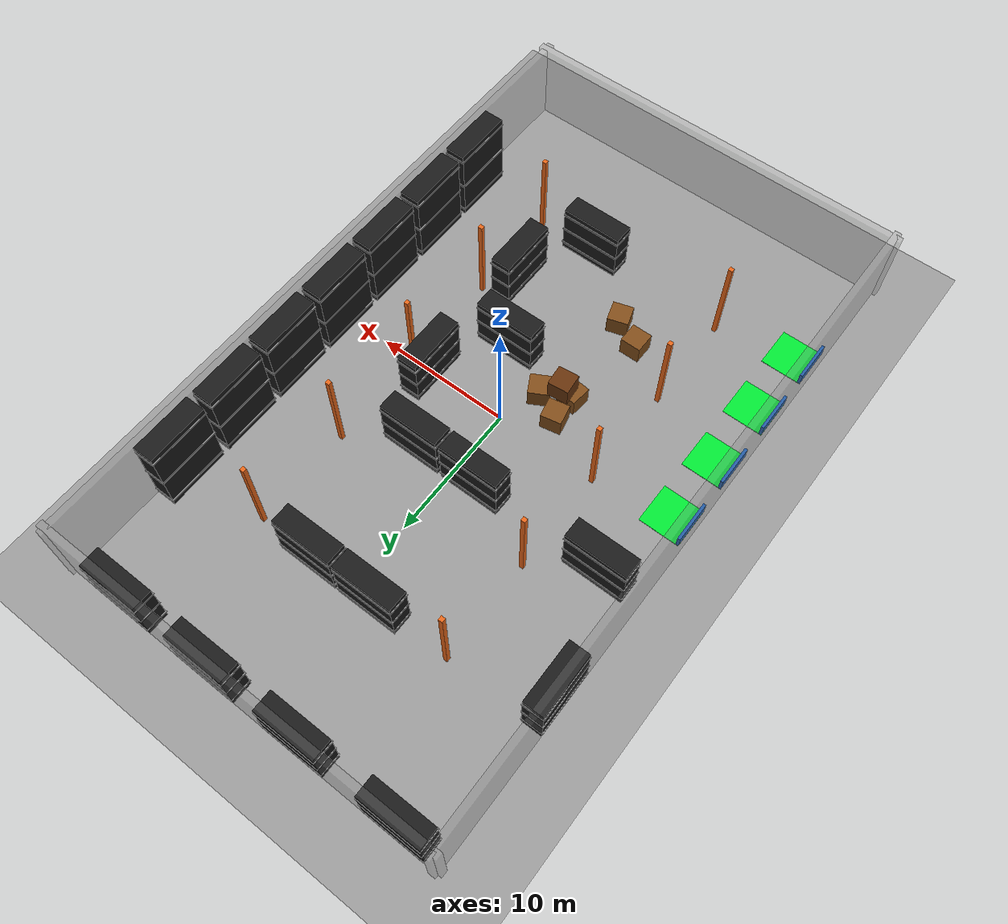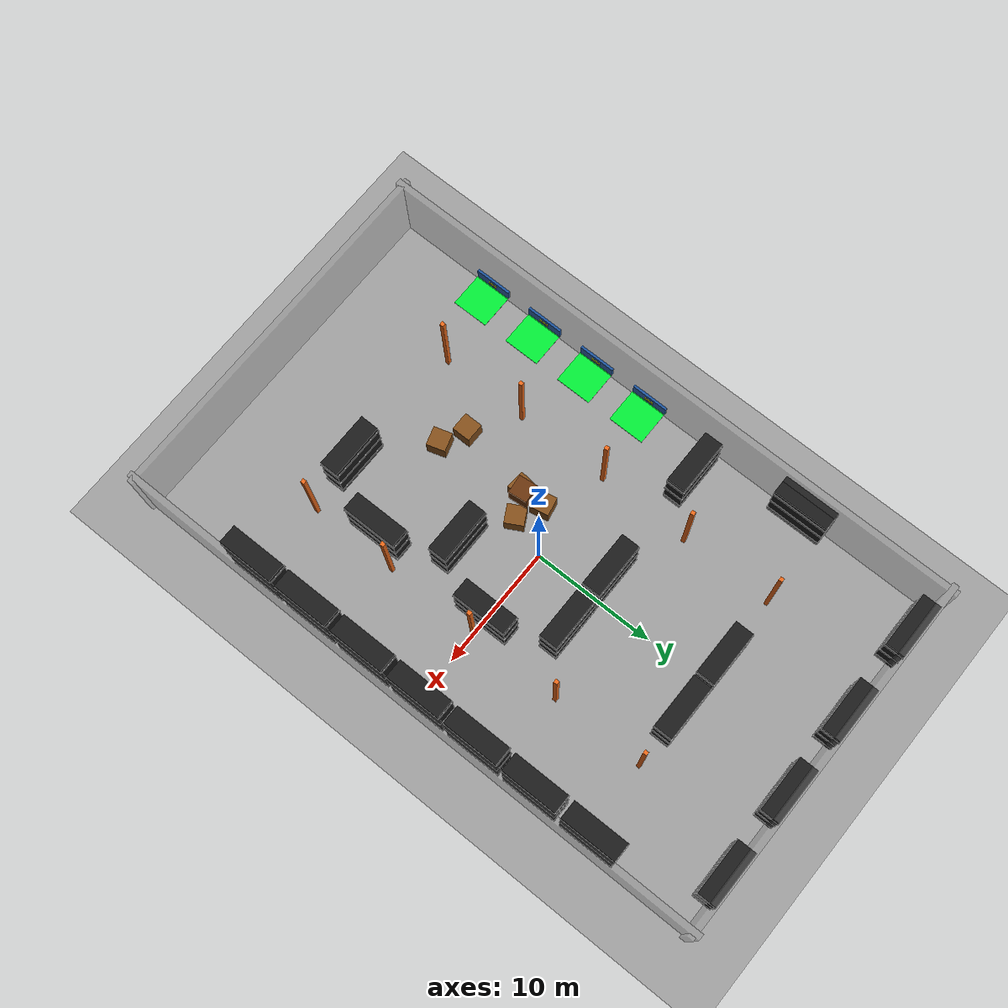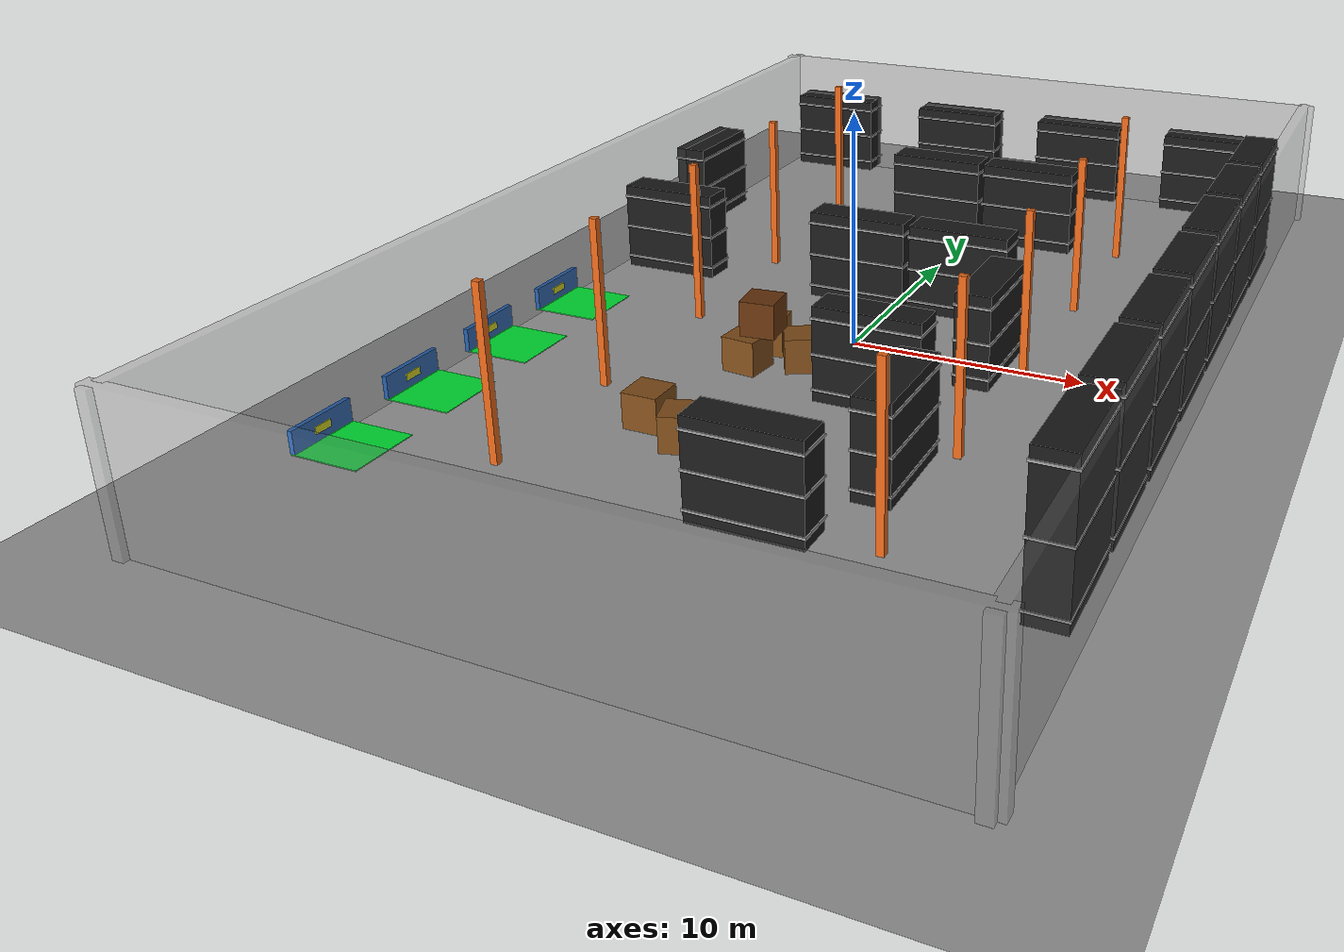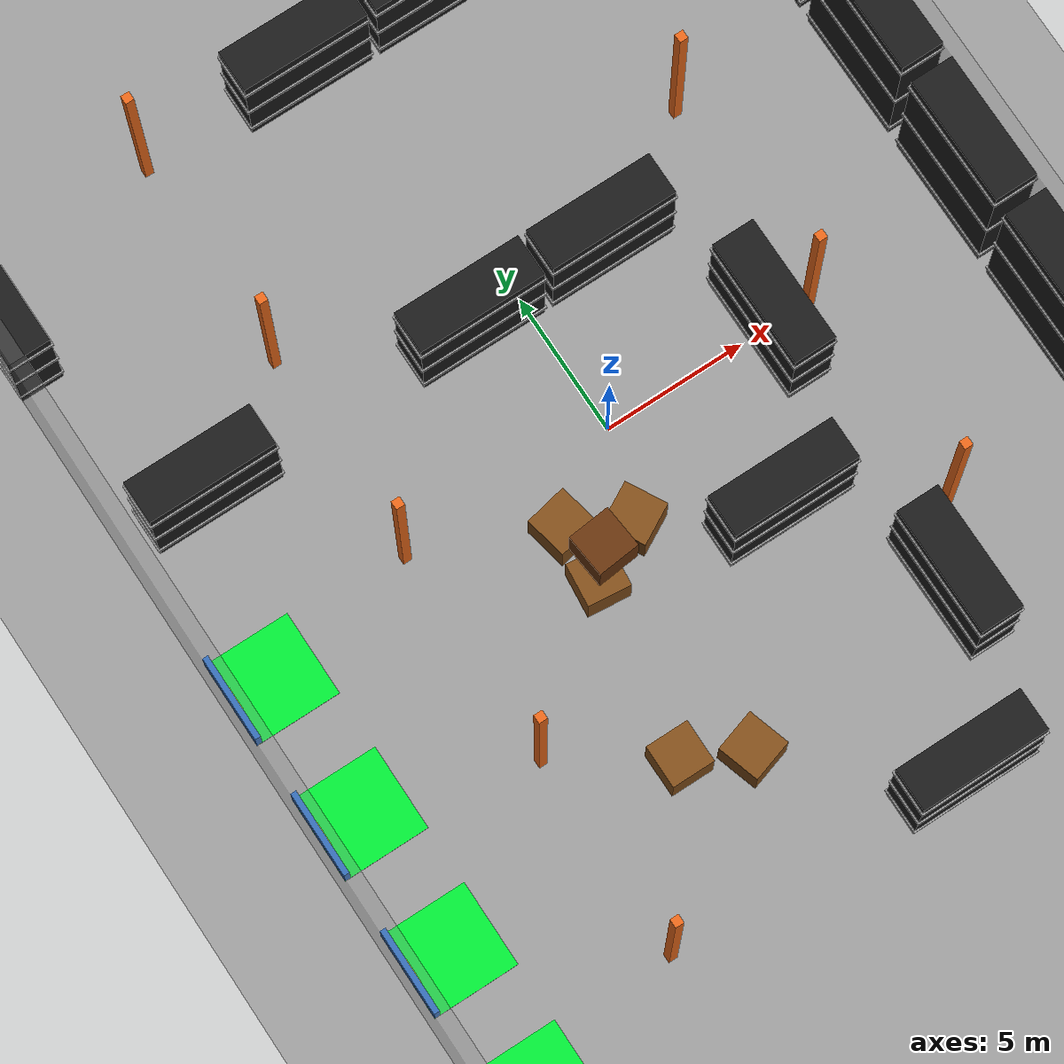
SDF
<sdf version="1.9">
 <world name="realistic_fleet_warehouse">
  <plugin filename="gz-sim-physics-system" name="gz::sim::systems::Physics"/>
  <plugin filename="gz-sim-user-commands-system" name="gz::sim::systems::UserCommands"/>
  <plugin filename="gz-sim-scene-broadcaster-system" name="gz::sim::systems::SceneBroadcaster"/>
  <plugin filename="gz-sim-sensors-system" name="gz::sim::systems::Sensors">
   <render_engine>ogre2</render_engine>
  </plugin>
  <plugin filename="gz-sim-linear-battery-system" name="gz::sim::systems::LinearBattery"/>
  <scene>
   <ambient>0.8 0.8 0.8 1.0</ambient>
   <background>0.5 0.5 0.5 1.0</background>
   <shadows>true</shadows>
  </scene>
  <light type="directional" name="sun">
   <pose>0 0 20 0 0 0</pose>
   <diffuse>0.9 0.9 0.9 1</diffuse>
   <specular>0.5 0.5 0.5 1</specular>
   <direction>-0.5 0.1 -0.9</direction>
  </light>
  <model name="ground_plane">
   <static>true</static>
   <link name="link">
    <collision name="col">
     <geometry><plane><normal>0 0 1</normal><size>200 200</size></plane></geometry>
    </collision>
    <visual name="vis">
     <geometry><plane><normal>0 0 1</normal><size>200 200</size></plane></geometry>
     <material><ambient>0.6 0.6 0.6 1</ambient><diffuse>0.6 0.6 0.6 1</diffuse></material>
    </visual>
   </link>
  </model>
  <model name="warehouse_boundary_walls">
   <static>true</static>
   <pose>0 0 2 0 0 0</pose>
   <link name="north_wall">
    <pose>0 24.5 0 0 0 0</pose>
    <collision name="c"><geometry><box><size>30.0 0.5 8.0</size></box></geometry></collision>
    <visual name="v">
     <geometry><box><size>30.0 0.5 8.0</size></box></geometry>
     <material><diffuse>0.5 0.5 0.5 0.3</diffuse></material>
    </visual>
   </link>
   <link name="south_wall">
    <pose>0 -24.5 0 0 0 0</pose>
    <collision name="c"><geometry><box><size>30.0 0.5 8.0</size></box></geometry></collision>
    <visual name="v">
     <geometry><box><size>30.0 0.5 8.0</size></box></geometry>
     <material><diffuse>0.5 0.5 0.5 0.3</diffuse></material>
    </visual>
   </link>
   <link name="east_wall">
    <pose>14.5 0 0 0 0 0</pose>
    <collision name="c"><geometry><box><size>0.5 50.0 8.0</size></box></geometry></collision>
    <visual name="v">
     <geometry><box><size>0.5 50.0 8.0</size></box></geometry>
     <material><diffuse>0.5 0.5 0.5 0.3</diffuse></material>
    </visual>
   </link>
   <link name="west_wall">
    <pose>-14.5 0 0 0 0 0</pose>
    <collision name="c"><geometry><box><size>0.5 50.0 8.0</size></box></geometry></collision>
    <visual name="v">
     <geometry><box><size>0.5 50.0 8.0</size></box></geometry>
     <material><diffuse>0.5 0.5 0.5 0.3</diffuse></material>
    </visual>
   </link>
  </model>
  <model name="warehouse_support_pillars">
   <static>true</static>
   <pose>0 0 2.5 0 0 0</pose>
   <link name="pillar_left_1">
    <pose>-7.5 -14.8 0 0 0 0</pose>
    <collision name="c"><geometry><box><size>0.3 0.3 9.0</size></box></geometry></collision>
    <visual name="v">
     <geometry><box><size>0.3 0.3 9.0</size></box></geometry>
     <material><diffuse>0.9 0.4 0.1 1</diffuse></material>
    </visual>
   </link>
   <link name="pillar_left_2">
    <pose>-7.5 -7.65 0 0 0 0</pose>
    <collision name="c"><geometry><box><size>0.3 0.3 9.0</size></box></geometry></collision>
    <visual name="v">
     <geometry><box><size>0.3 0.3 9.0</size></box></geometry>
     <material><diffuse>0.9 0.4 0.1 1</diffuse></material>
    </visual>
   </link>
   <link name="pillar_left_3">
    <pose>-7.5 0.0 0 0 0 0</pose>
    <collision name="c"><geometry><box><size>0.3 0.3 9.0</size></box></geometry></collision>
    <visual name="v">
     <geometry><box><size>0.3 0.3 9.0</size></box></geometry>
     <material><diffuse>0.9 0.4 0.1 1</diffuse></material>
    </visual>
   </link>
   <link name="pillar_left_4">
    <pose>-7.5 7.5 0 0 0 0</pose>
    <collision name="c"><geometry><box><size>0.3 0.3 9.0</size></box></geometry></collision>
    <visual name="v">
     <geometry><box><size>0.3 0.3 9.0</size></box></geometry>
     <material><diffuse>0.9 0.4 0.1 1</diffuse></material>
    </visual>
   </link>
   <link name="pillar_left_5">
    <pose>-7.5 15.0 0 0 0 0</pose>
    <collision name="c"><geometry><box><size>0.3 0.3 9.0</size></box></geometry></collision>
    <visual name="v">
     <geometry><box><size>0.3 0.3 9.0</size></box></geometry>
     <material><diffuse>0.9 0.4 0.1 1</diffuse></material>
    </visual>
   </link>
   <link name="pillar_right_1">
    <pose>7.5 -14.8 0 0 0 0</pose>
    <collision name="c"><geometry><box><size>0.3 0.3 9.0</size></box></geometry></collision>
    <visual name="v">
     <geometry><box><size>0.3 0.3 9.0</size></box></geometry>
     <material><diffuse>0.9 0.4 0.1 1</diffuse></material>
    </visual>
   </link>
   <link name="pillar_right_2">
    <pose>7.5 -7.65 0 0 0 0</pose>
    <collision name="c"><geometry><box><size>0.3 0.3 9.0</size></box></geometry></collision>
    <visual name="v">
     <geometry><box><size>0.3 0.3 9.0</size></box></geometry>
     <material><diffuse>0.9 0.4 0.1 1</diffuse></material>
    </visual>
   </link>
   <link name="pillar_right_3">
    <pose>7.5 0.0 0 0 0 0</pose>
    <collision name="c"><geometry><box><size>0.3 0.3 9.0</size></box></geometry></collision>
    <visual name="v">
     <geometry><box><size>0.3 0.3 9.0</size></box></geometry>
     <material><diffuse>0.9 0.4 0.1 1</diffuse></material>
    </visual>
   </link>
   <link name="pillar_right_4">
    <pose>7.5 7.5 0 0 0 0</pose>
    <collision name="c"><geometry><box><size>0.3 0.3 9.0</size></box></geometry></collision>
    <visual name="v">
     <geometry><box><size>0.3 0.3 9.0</size></box></geometry>
     <material><diffuse>0.9 0.4 0.1 1</diffuse></material>
    </visual>
   </link>
   <link name="pillar_right_5">
    <pose>7.5 15.0 0 0 0 0</pose>
    <collision name="c"><geometry><box><size>0.3 0.3 9.0</size></box></geometry></collision>
    <visual name="v">
     <geometry><box><size>0.3 0.3 9.0</size></box></geometry>
     <material><diffuse>0.9 0.4 0.1 1</diffuse></material>
    </visual>
   </link>
  </model>
  <model name="amr_dock_1">
   <static>true</static>
   <pose>-13 -1 0.0630 0 0 0</pose>
   <link name="pad">
    <pose>0 0 0.02 0 0 0</pose>
    <visual name="vis">
     <geometry><box><size>3 3 0.04</size></box></geometry>
     <material>
      <diffuse>0.0 0.9 0.2 1</diffuse>
      <pbr><metal><albedo_color>0.0 0.9 0.2 1</albedo_color></metal></pbr>
     </material>
    </visual>
   </link>
   <link name="charging_station">
    <pose>-1.4 0 0.5 0 0 0</pose>
    <visual name="vis">
     <geometry><box><size>0.2 3.0 1.0</size></box></geometry>
     <material><diffuse>0.1 0.4 0.8 1</diffuse></material>
    </visual>
    <collision name="c"><geometry><box><size>0.2 3.0 1.0</size></box></geometry></collision>
   </link>
   <link name="charger_symbol">
    <pose>-1.28 0 0.5 0 0 0</pose>
    <visual name="vis">
     <geometry><box><size>0.02 0.8 0.3</size></box></geometry>
     <material><diffuse>1.0 1.0 0.0 1</diffuse></material>
    </visual>
   </link>
  </model>
  <model name="amr_dock_2">
   <static>true</static>
   <pose>-13 -6 0.0630 0 0 0</pose>
   <link name="pad">
    <pose>0 0 0.02 0 0 0</pose>
    <visual name="vis">
     <geometry><box><size>3 3 0.04</size></box></geometry>
     <material>
      <diffuse>0.0 0.9 0.2 1</diffuse>
      <pbr><metal><albedo_color>0.0 0.9 0.2 1</albedo_color></metal></pbr>
     </material>
    </visual>
   </link>
   <link name="charging_station">
    <pose>-1.4 0 0.5 0 0 0</pose>
    <visual name="vis">
     <geometry><box><size>0.2 3.0 1.0</size></box></geometry>
     <material><diffuse>0.1 0.4 0.8 1</diffuse></material>
    </visual>
    <collision name="c"><geometry><box><size>0.2 3.0 1.0</size></box></geometry></collision>
   </link>
   <link name="charger_symbol">
    <pose>-1.28 0 0.5 0 0 0</pose>
    <visual name="vis">
     <geometry><box><size>0.02 0.8 0.3</size></box></geometry>
     <material><diffuse>1.0 1.0 0.0 1</diffuse></material>
    </visual>
   </link>
  </model>
  <model name="amr_dock_3">
   <static>true</static>
   <pose>-13 -11 0.0630 0 0 0</pose>
   <link name="pad">
    <pose>0 0 0.02 0 0 0</pose>
    <visual name="vis">
     <geometry><box><size>3 3 0.04</size></box></geometry>
     <material>
      <diffuse>0.0 0.9 0.2 1</diffuse>
      <pbr><metal><albedo_color>0.0 0.9 0.2 1</albedo_color></metal></pbr>
     </material>
    </visual>
   </link>
   <link name="charging_station">
    <pose>-1.4 0 0.5 0 0 0</pose>
    <visual name="vis">
     <geometry><box><size>0.2 3.0 1.0</size></box></geometry>
     <material><diffuse>0.1 0.4 0.8 1</diffuse></material>
    </visual>
    <collision name="c"><geometry><box><size>0.2 3.0 1.0</size></box></geometry></collision>
   </link>
   <link name="charger_symbol">
    <pose>-1.28 0 0.5 0 0 0</pose>
    <visual name="vis">
     <geometry><box><size>0.02 0.8 0.3</size></box></geometry>
     <material><diffuse>1.0 1.0 0.0 1</diffuse></material>
    </visual>
   </link>
  </model>
  <model name="amr_dock_4">
   <static>true</static>
   <pose>-13 -16 0.0630 0 0 0</pose>
   <link name="pad">
    <pose>0 0 0.02 0 0 0</pose>
    <visual name="vis">
     <geometry><box><size>3 3 0.04</size></box></geometry>
     <material>
      <diffuse>0.0 0.9 0.2 1</diffuse>
      <pbr><metal><albedo_color>0.0 0.9 0.2 1</albedo_color></metal></pbr>
     </material>
    </visual>
   </link>
   <link name="charging_station">
    <pose>-1.4 0 0.5 0 0 0</pose>
    <visual name="vis">
     <geometry><box><size>0.2 3.0 1.0</size></box></geometry>
     <material><diffuse>0.1 0.4 0.8 1</diffuse></material>
    </visual>
    <collision name="c"><geometry><box><size>0.2 3.0 1.0</size></box></geometry></collision>
   </link>
   <link name="charger_symbol">
    <pose>-1.28 0 0.5 0 0 0</pose>
    <visual name="vis">
     <geometry><box><size>0.02 0.8 0.3</size></box></geometry>
     <material><diffuse>1.0 1.0 0.0 1</diffuse></material>
    </visual>
   </link>
  </model>
  <model name="r9">
   <static>true</static>
   <pose>-4 24 0 0 0 0</pose>
   <link name="p">
    <pose>0 0 2 0 0 0</pose>
    <visual name="v">
     <geometry><box><size>4.5 1.5 4</size></box></geometry>
     <material>
      <diffuse>0.1 0.1 0.1 1</diffuse>
      <pbr><metal><albedo_color>0.1 0.1 0.1 1</albedo_color></metal></pbr>
     </material>
    </visual>
    <collision name="c"><geometry><box><size>4.5 1.5 4</size></box></geometry></collision>
   </link>
   <link name="s1">
    <pose>0 0 0.5 0 0 0</pose>
    <visual name="v">
     <geometry><box><size>4.6 1.6 0.1</size></box></geometry>
     <material>
      <diffuse>0.6 0.6 0.6 1</diffuse>
      <pbr><metal><albedo_color>0.6 0.6 0.6 1</albedo_color></metal></pbr>
     </material>
    </visual>
    <collision name="c"><geometry><box><size>4.6 1.6 0.1</size></box></geometry></collision>
   </link>
   <link name="s2">
    <pose>0 0 2 0 0 0</pose>
    <visual name="v">
     <geometry><box><size>4.6 1.6 0.1</size></box></geometry>
     <material>
      <diffuse>0.6 0.6 0.6 1</diffuse>
      <pbr><metal><albedo_color>0.6 0.6 0.6 1</albedo_color></metal></pbr>
     </material>
    </visual>
    <collision name="c"><geometry><box><size>4.6 1.6 0.1</size></box></geometry></collision>
   </link>
   <link name="s3">
    <pose>0 0 3.5 0 0 0</pose>
    <visual name="v">
     <geometry><box><size>4.6 1.6 0.1</size></box></geometry>
     <material>
      <diffuse>0.6 0.6 0.6 1</diffuse>
      <pbr><metal><albedo_color>0.6 0.6 0.6 1</albedo_color></metal></pbr>
     </material>
    </visual>
    <collision name="c"><geometry><box><size>4.6 1.6 0.1</size></box></geometry></collision>
   </link>
  </model>
  <model name="r10">
   <static>true</static>
   <pose>-1.8 5 0 0 0 0</pose>
   <link name="p">
    <pose>0 0 2 0 0 0</pose>
    <visual name="v">
     <geometry><box><size>4.5 1.5 4</size></box></geometry>
     <material>
      <diffuse>0.1 0.1 0.1 1</diffuse>
      <pbr><metal><albedo_color>0.1 0.1 0.1 1</albedo_color></metal></pbr>
     </material>
    </visual>
    <collision name="c"><geometry><box><size>4.5 1.5 4</size></box></geometry></collision>
   </link>
   <link name="s1">
    <pose>0 0 0.5 0 0 0</pose>
    <visual name="v">
     <geometry><box><size>4.6 1.6 0.1</size></box></geometry>
     <material>
      <diffuse>0.6 0.6 0.6 1</diffuse>
      <pbr><metal><albedo_color>0.6 0.6 0.6 1</albedo_color></metal></pbr>
     </material>
    </visual>
    <collision name="c"><geometry><box><size>4.6 1.6 0.1</size></box></geometry></collision>
   </link>
   <link name="s2">
    <pose>0 0 2 0 0 0</pose>
    <visual name="v">
     <geometry><box><size>4.6 1.6 0.1</size></box></geometry>
     <material>
      <diffuse>0.6 0.6 0.6 1</diffuse>
      <pbr><metal><albedo_color>0.6 0.6 0.6 1</albedo_color></metal></pbr>
     </material>
    </visual>
    <collision name="c"><geometry><box><size>4.6 1.6 0.1</size></box></geometry></collision>
   </link>
   <link name="s3">
    <pose>0 0 3.5 0 0 0</pose>
    <visual name="v">
     <geometry><box><size>4.6 1.6 0.1</size></box></geometry>
     <material>
      <diffuse>0.6 0.6 0.6 1</diffuse>
      <pbr><metal><albedo_color>0.6 0.6 0.6 1</albedo_color></metal></pbr>
     </material>
    </visual>
    <collision name="c"><geometry><box><size>4.6 1.6 0.1</size></box></geometry></collision>
   </link>
  </model>
  <model name="r1">
   <static>true</static>
   <pose>3 24 0 0 0 0</pose>
   <link name="p">
    <pose>0 0 2 0 0 0</pose>
    <visual name="v">
     <geometry><box><size>4.5 1.5 4</size></box></geometry>
     <material>
      <diffuse>0.1 0.1 0.1 1</diffuse>
      <pbr><metal><albedo_color>0.1 0.1 0.1 1</albedo_color></metal></pbr>
     </material>
    </visual>
    <collision name="c"><geometry><box><size>4.5 1.5 4</size></box></geometry></collision>
   </link>
   <link name="s1">
    <pose>0 0 0.5 0 0 0</pose>
    <visual name="v">
     <geometry><box><size>4.6 1.6 0.1</size></box></geometry>
     <material>
      <diffuse>0.6 0.6 0.6 1</diffuse>
      <pbr><metal><albedo_color>0.6 0.6 0.6 1</albedo_color></metal></pbr>
     </material>
    </visual>
    <collision name="c"><geometry><box><size>4.6 1.6 0.1</size></box></geometry></collision>
   </link>
   <link name="s2">
    <pose>0 0 2 0 0 0</pose>
    <visual name="v">
     <geometry><box><size>4.6 1.6 0.1</size></box></geometry>
     <material>
      <diffuse>0.6 0.6 0.6 1</diffuse>
      <pbr><metal><albedo_color>0.6 0.6 0.6 1</albedo_color></metal></pbr>
     </material>
    </visual>
    <collision name="c"><geometry><box><size>4.6 1.6 0.1</size></box></geometry></collision>
   </link>
   <link name="s3">
    <pose>0 0 3.5 0 0 0</pose>
    <visual name="v">
     <geometry><box><size>4.6 1.6 0.1</size></box></geometry>
     <material>
      <diffuse>0.6 0.6 0.6 1</diffuse>
      <pbr><metal><albedo_color>0.6 0.6 0.6 1</albedo_color></metal></pbr>
     </material>
    </visual>
    <collision name="c"><geometry><box><size>4.6 1.6 0.1</size></box></geometry></collision>
   </link>
  </model>
  <model name="r2">
   <static>true</static>
   <pose>3 5 0 0 0 0</pose>
   <link name="p">
    <pose>0 0 2 0 0 0</pose>
    <visual name="v">
     <geometry><box><size>4.5 1.5 4</size></box></geometry>
     <material>
      <diffuse>0.1 0.1 0.1 1</diffuse>
      <pbr><metal><albedo_color>0.1 0.1 0.1 1</albedo_color></metal></pbr>
     </material>
    </visual>
    <collision name="c"><geometry><box><size>4.5 1.5 4</size></box></geometry></collision>
   </link>
   <link name="s1">
    <pose>0 0 0.5 0 0 0</pose>
    <visual name="v">
     <geometry><box><size>4.6 1.6 0.1</size></box></geometry>
     <material>
      <diffuse>0.6 0.6 0.6 1</diffuse>
      <pbr><metal><albedo_color>0.6 0.6 0.6 1</albedo_color></metal></pbr>
     </material>
    </visual>
    <collision name="c"><geometry><box><size>4.6 1.6 0.1</size></box></geometry></collision>
   </link>
   <link name="s2">
    <pose>0 0 2 0 0 0</pose>
    <visual name="v">
     <geometry><box><size>4.6 1.6 0.1</size></box></geometry>
     <material>
      <diffuse>0.6 0.6 0.6 1</diffuse>
      <pbr><metal><albedo_color>0.6 0.6 0.6 1</albedo_color></metal></pbr>
     </material>
    </visual>
    <collision name="c"><geometry><box><size>4.6 1.6 0.1</size></box></geometry></collision>
   </link>
   <link name="s3">
    <pose>0 0 3.5 0 0 0</pose>
    <visual name="v">
     <geometry><box><size>4.6 1.6 0.1</size></box></geometry>
     <material>
      <diffuse>0.6 0.6 0.6 1</diffuse>
      <pbr><metal><albedo_color>0.6 0.6 0.6 1</albedo_color></metal></pbr>
     </material>
    </visual>
    <collision name="c"><geometry><box><size>4.6 1.6 0.1</size></box></geometry></collision>
   </link>
  </model>
  <model name="r3">
   <static>true</static>
   <pose>3 -5 0 0 0 0</pose>
   <link name="p">
    <pose>0 0 2 0 0 0</pose>
    <visual name="v">
     <geometry><box><size>4.5 1.5 4</size></box></geometry>
     <material>
      <diffuse>0.1 0.1 0.1 1</diffuse>
      <pbr><metal><albedo_color>0.1 0.1 0.1 1</albedo_color></metal></pbr>
     </material>
    </visual>
    <collision name="c"><geometry><box><size>4.5 1.5 4</size></box></geometry></collision>
   </link>
   <link name="s1">
    <pose>0 0 0.5 0 0 0</pose>
    <visual name="v">
     <geometry><box><size>4.6 1.6 0.1</size></box></geometry>
     <material>
      <diffuse>0.6 0.6 0.6 1</diffuse>
      <pbr><metal><albedo_color>0.6 0.6 0.6 1</albedo_color></metal></pbr>
     </material>
    </visual>
    <collision name="c"><geometry><box><size>4.6 1.6 0.1</size></box></geometry></collision>
   </link>
   <link name="s2">
    <pose>0 0 2 0 0 0</pose>
    <visual name="v">
     <geometry><box><size>4.6 1.6 0.1</size></box></geometry>
     <material>
      <diffuse>0.6 0.6 0.6 1</diffuse>
      <pbr><metal><albedo_color>0.6 0.6 0.6 1</albedo_color></metal></pbr>
     </material>
    </visual>
    <collision name="c"><geometry><box><size>4.6 1.6 0.1</size></box></geometry></collision>
   </link>
   <link name="s3">
    <pose>0 0 3.5 0 0 0</pose>
    <visual name="v">
     <geometry><box><size>4.6 1.6 0.1</size></box></geometry>
     <material>
      <diffuse>0.6 0.6 0.6 1</diffuse>
      <pbr><metal><albedo_color>0.6 0.6 0.6 1</albedo_color></metal></pbr>
     </material>
    </visual>
    <collision name="c"><geometry><box><size>4.6 1.6 0.1</size></box></geometry></collision>
   </link>
  </model>
  <model name="r4">
   <static>true</static>
   <pose>3 -15 0 0 0 0</pose>
   <link name="p">
    <pose>0 0 2 0 0 0</pose>
    <visual name="v">
     <geometry><box><size>4.5 1.5 4</size></box></geometry>
     <material>
      <diffuse>0.1 0.1 0.1 1</diffuse>
      <pbr><metal><albedo_color>0.1 0.1 0.1 1</albedo_color></metal></pbr>
     </material>
    </visual>
    <collision name="c"><geometry><box><size>4.5 1.5 4</size></box></geometry></collision>
   </link>
   <link name="s1">
    <pose>0 0 0.5 0 0 0</pose>
    <visual name="v">
     <geometry><box><size>4.6 1.6 0.1</size></box></geometry>
     <material>
      <diffuse>0.6 0.6 0.6 1</diffuse>
      <pbr><metal><albedo_color>0.6 0.6 0.6 1</albedo_color></metal></pbr>
     </material>
    </visual>
    <collision name="c"><geometry><box><size>4.6 1.6 0.1</size></box></geometry></collision>
   </link>
   <link name="s2">
    <pose>0 0 2 0 0 0</pose>
    <visual name="v">
     <geometry><box><size>4.6 1.6 0.1</size></box></geometry>
     <material>
      <diffuse>0.6 0.6 0.6 1</diffuse>
      <pbr><metal><albedo_color>0.6 0.6 0.6 1</albedo_color></metal></pbr>
     </material>
    </visual>
    <collision name="c"><geometry><box><size>4.6 1.6 0.1</size></box></geometry></collision>
   </link>
   <link name="s3">
    <pose>0 0 3.5 0 0 0</pose>
    <visual name="v">
     <geometry><box><size>4.6 1.6 0.1</size></box></geometry>
     <material>
      <diffuse>0.6 0.6 0.6 1</diffuse>
      <pbr><metal><albedo_color>0.6 0.6 0.6 1</albedo_color></metal></pbr>
     </material>
    </visual>
    <collision name="c"><geometry><box><size>4.6 1.6 0.1</size></box></geometry></collision>
   </link>
  </model>
  <model name="r5">
   <static>true</static>
   <pose>13.5 0.5 0 0 0 1.5750</pose>
   <link name="p">
    <pose>0 0 3 0 0 0</pose>
    <visual name="v">
     <geometry><box><size>4.5 1.5 6</size></box></geometry>
     <material>
      <diffuse>0.1 0.1 0.1 1</diffuse>
      <pbr><metal><albedo_color>0.1 0.1 0.1 1</albedo_color></metal></pbr>
     </material>
    </visual>
    <collision name="c"><geometry><box><size>4.5 1.5 6</size></box></geometry></collision>
   </link>
   <link name="s1">
    <pose>0 0 0.5 0 0 0</pose>
    <visual name="v">
     <geometry><box><size>4.6 1.6 0.1</size></box></geometry>
     <material>
      <diffuse>0.6 0.6 0.6 1</diffuse>
      <pbr><metal><albedo_color>0.6 0.6 0.6 1</albedo_color></metal></pbr>
     </material>
    </visual>
    <collision name="c"><geometry><box><size>4.6 1.6 0.1</size></box></geometry></collision>
   </link>
   <link name="s2">
    <pose>0 0 3 0 0 0</pose>
    <visual name="v">
     <geometry><box><size>4.6 1.6 0.1</size></box></geometry>
     <material>
      <diffuse>0.6 0.6 0.6 1</diffuse>
      <pbr><metal><albedo_color>0.6 0.6 0.6 1</albedo_color></metal></pbr>
     </material>
    </visual>
    <collision name="c"><geometry><box><size>4.6 1.6 0.1</size></box></geometry></collision>
   </link>
   <link name="s3">
    <pose>0 0 5.5 0 0 0</pose>
    <visual name="v">
     <geometry><box><size>4.6 1.6 0.1</size></box></geometry>
     <material>
      <diffuse>0.6 0.6 0.6 1</diffuse>
      <pbr><metal><albedo_color>0.6 0.6 0.6 1</albedo_color></metal></pbr>
     </material>
    </visual>
    <collision name="c"><geometry><box><size>4.6 1.6 0.1</size></box></geometry></collision>
   </link>
  </model>
  <model name="r16">
   <static>true</static>
   <pose>13.5 5.5 0 0 0 1.5750</pose>
   <link name="p">
    <pose>0 0 3 0 0 0</pose>
    <visual name="v">
     <geometry><box><size>4.5 1.5 6</size></box></geometry>
     <material>
      <diffuse>0.1 0.1 0.1 1</diffuse>
      <pbr><metal><albedo_color>0.1 0.1 0.1 1</albedo_color></metal></pbr>
     </material>
    </visual>
    <collision name="c"><geometry><box><size>4.5 1.5 6</size></box></geometry></collision>
   </link>
   <link name="s1">
    <pose>0 0 0.5 0 0 0</pose>
    <visual name="v">
     <geometry><box><size>4.6 1.6 0.1</size></box></geometry>
     <material>
      <diffuse>0.6 0.6 0.6 1</diffuse>
      <pbr><metal><albedo_color>0.6 0.6 0.6 1</albedo_color></metal></pbr>
     </material>
    </visual>
    <collision name="c"><geometry><box><size>4.6 1.6 0.1</size></box></geometry></collision>
   </link>
   <link name="s2">
    <pose>0 0 3 0 0 0</pose>
    <visual name="v">
     <geometry><box><size>4.6 1.6 0.1</size></box></geometry>
     <material>
      <diffuse>0.6 0.6 0.6 1</diffuse>
      <pbr><metal><albedo_color>0.6 0.6 0.6 1</albedo_color></metal></pbr>
     </material>
    </visual>
    <collision name="c"><geometry><box><size>4.6 1.6 0.1</size></box></geometry></collision>
   </link>
   <link name="s3">
    <pose>0 0 5.5 0 0 0</pose>
    <visual name="v">
     <geometry><box><size>4.6 1.6 0.1</size></box></geometry>
     <material>
      <diffuse>0.6 0.6 0.6 1</diffuse>
      <pbr><metal><albedo_color>0.6 0.6 0.6 1</albedo_color></metal></pbr>
     </material>
    </visual>
    <collision name="c"><geometry><box><size>4.6 1.6 0.1</size></box></geometry></collision>
   </link>
  </model>
  <model name="r17">
   <static>true</static>
   <pose>13.5 10.5 0 0 0 1.5750</pose>
   <link name="p">
    <pose>0 0 3 0 0 0</pose>
    <visual name="v">
     <geometry><box><size>4.5 1.5 6</size></box></geometry>
     <material>
      <diffuse>0.1 0.1 0.1 1</diffuse>
      <pbr><metal><albedo_color>0.1 0.1 0.1 1</albedo_color></metal></pbr>
     </material>
    </visual>
    <collision name="c"><geometry><box><size>4.5 1.5 6</size></box></geometry></collision>
   </link>
   <link name="s1">
    <pose>0 0 0.5 0 0 0</pose>
    <visual name="v">
     <geometry><box><size>4.6 1.6 0.1</size></box></geometry>
     <material>
      <diffuse>0.6 0.6 0.6 1</diffuse>
      <pbr><metal><albedo_color>0.6 0.6 0.6 1</albedo_color></metal></pbr>
     </material>
    </visual>
    <collision name="c"><geometry><box><size>4.6 1.6 0.1</size></box></geometry></collision>
   </link>
   <link name="s2">
    <pose>0 0 3 0 0 0</pose>
    <visual name="v">
     <geometry><box><size>4.6 1.6 0.1</size></box></geometry>
     <material>
      <diffuse>0.6 0.6 0.6 1</diffuse>
      <pbr><metal><albedo_color>0.6 0.6 0.6 1</albedo_color></metal></pbr>
     </material>
    </visual>
    <collision name="c"><geometry><box><size>4.6 1.6 0.1</size></box></geometry></collision>
   </link>
   <link name="s3">
    <pose>0 0 5.5 0 0 0</pose>
    <visual name="v">
     <geometry><box><size>4.6 1.6 0.1</size></box></geometry>
     <material>
      <diffuse>0.6 0.6 0.6 1</diffuse>
      <pbr><metal><albedo_color>0.6 0.6 0.6 1</albedo_color></metal></pbr>
     </material>
    </visual>
    <collision name="c"><geometry><box><size>4.6 1.6 0.1</size></box></geometry></collision>
   </link>
  </model>
  <model name="r18">
   <static>true</static>
   <pose>13.5 15.5 0 0 0 1.5750</pose>
   <link name="p">
    <pose>0 0 3 0 0 0</pose>
    <visual name="v">
     <geometry><box><size>4.5 1.5 6</size></box></geometry>
     <material>
      <diffuse>0.1 0.1 0.1 1</diffuse>
      <pbr><metal><albedo_color>0.1 0.1 0.1 1</albedo_color></metal></pbr>
     </material>
    </visual>
    <collision name="c"><geometry><box><size>4.5 1.5 6</size></box></geometry></collision>
   </link>
   <link name="s1">
    <pose>0 0 0.5 0 0 0</pose>
    <visual name="v">
     <geometry><box><size>4.6 1.6 0.1</size></box></geometry>
     <material>
      <diffuse>0.6 0.6 0.6 1</diffuse>
      <pbr><metal><albedo_color>0.6 0.6 0.6 1</albedo_color></metal></pbr>
     </material>
    </visual>
    <collision name="c"><geometry><box><size>4.6 1.6 0.1</size></box></geometry></collision>
   </link>
   <link name="s2">
    <pose>0 0 3 0 0 0</pose>
    <visual name="v">
     <geometry><box><size>4.6 1.6 0.1</size></box></geometry>
     <material>
      <diffuse>0.6 0.6 0.6 1</diffuse>
      <pbr><metal><albedo_color>0.6 0.6 0.6 1</albedo_color></metal></pbr>
     </material>
    </visual>
    <collision name="c"><geometry><box><size>4.6 1.6 0.1</size></box></geometry></collision>
   </link>
   <link name="s3">
    <pose>0 0 5.5 0 0 0</pose>
    <visual name="v">
     <geometry><box><size>4.6 1.6 0.1</size></box></geometry>
     <material>
      <diffuse>0.6 0.6 0.6 1</diffuse>
      <pbr><metal><albedo_color>0.6 0.6 0.6 1</albedo_color></metal></pbr>
     </material>
    </visual>
    <collision name="c"><geometry><box><size>4.6 1.6 0.1</size></box></geometry></collision>
   </link>
  </model>
  <model name="r19">
   <static>true</static>
   <pose>13.5 -4.5 0 0 0 1.5750</pose>
   <link name="p">
    <pose>0 0 3 0 0 0</pose>
    <visual name="v">
     <geometry><box><size>4.5 1.5 6</size></box></geometry>
     <material>
      <diffuse>0.1 0.1 0.1 1</diffuse>
      <pbr><metal><albedo_color>0.1 0.1 0.1 1</albedo_color></metal></pbr>
     </material>
    </visual>
    <collision name="c"><geometry><box><size>4.5 1.5 6</size></box></geometry></collision>
   </link>
   <link name="s1">
    <pose>0 0 0.5 0 0 0</pose>
    <visual name="v">
     <geometry><box><size>4.6 1.6 0.1</size></box></geometry>
     <material>
      <diffuse>0.6 0.6 0.6 1</diffuse>
      <pbr><metal><albedo_color>0.6 0.6 0.6 1</albedo_color></metal></pbr>
     </material>
    </visual>
    <collision name="c"><geometry><box><size>4.6 1.6 0.1</size></box></geometry></collision>
   </link>
   <link name="s2">
    <pose>0 0 3 0 0 0</pose>
    <visual name="v">
     <geometry><box><size>4.6 1.6 0.1</size></box></geometry>
     <material>
      <diffuse>0.6 0.6 0.6 1</diffuse>
      <pbr><metal><albedo_color>0.6 0.6 0.6 1</albedo_color></metal></pbr>
     </material>
    </visual>
    <collision name="c"><geometry><box><size>4.6 1.6 0.1</size></box></geometry></collision>
   </link>
   <link name="s3">
    <pose>0 0 5.5 0 0 0</pose>
    <visual name="v">
     <geometry><box><size>4.6 1.6 0.1</size></box></geometry>
     <material>
      <diffuse>0.6 0.6 0.6 1</diffuse>
      <pbr><metal><albedo_color>0.6 0.6 0.6 1</albedo_color></metal></pbr>
     </material>
    </visual>
    <collision name="c"><geometry><box><size>4.6 1.6 0.1</size></box></geometry></collision>
   </link>
  </model>
  <model name="r20">
   <static>true</static>
   <pose>13.5 -9.5 0 0 0 1.5750</pose>
   <link name="p">
    <pose>0 0 3 0 0 0</pose>
    <visual name="v">
     <geometry><box><size>4.5 1.5 6</size></box></geometry>
     <material>
      <diffuse>0.1 0.1 0.1 1</diffuse>
      <pbr><metal><albedo_color>0.1 0.1 0.1 1</albedo_color></metal></pbr>
     </material>
    </visual>
    <collision name="c"><geometry><box><size>4.5 1.5 6</size></box></geometry></collision>
   </link>
   <link name="s1">
    <pose>0 0 0.5 0 0 0</pose>
    <visual name="v">
     <geometry><box><size>4.6 1.6 0.1</size></box></geometry>
     <material>
      <diffuse>0.6 0.6 0.6 1</diffuse>
      <pbr><metal><albedo_color>0.6 0.6 0.6 1</albedo_color></metal></pbr>
     </material>
    </visual>
    <collision name="c"><geometry><box><size>4.6 1.6 0.1</size></box></geometry></collision>
   </link>
   <link name="s2">
    <pose>0 0 3 0 0 0</pose>
    <visual name="v">
     <geometry><box><size>4.6 1.6 0.1</size></box></geometry>
     <material>
      <diffuse>0.6 0.6 0.6 1</diffuse>
      <pbr><metal><albedo_color>0.6 0.6 0.6 1</albedo_color></metal></pbr>
     </material>
    </visual>
    <collision name="c"><geometry><box><size>4.6 1.6 0.1</size></box></geometry></collision>
   </link>
   <link name="s3">
    <pose>0 0 5.5 0 0 0</pose>
    <visual name="v">
     <geometry><box><size>4.6 1.6 0.1</size></box></geometry>
     <material>
      <diffuse>0.6 0.6 0.6 1</diffuse>
      <pbr><metal><albedo_color>0.6 0.6 0.6 1</albedo_color></metal></pbr>
     </material>
    </visual>
    <collision name="c"><geometry><box><size>4.6 1.6 0.1</size></box></geometry></collision>
   </link>
  </model>
  <model name="r21">
   <static>true</static>
   <pose>13.5 -14.5 0 0 0 1.5750</pose>
   <link name="p">
    <pose>0 0 3 0 0 0</pose>
    <visual name="v">
     <geometry><box><size>4.5 1.5 6</size></box></geometry>
     <material>
      <diffuse>0.1 0.1 0.1 1</diffuse>
      <pbr><metal><albedo_color>0.1 0.1 0.1 1</albedo_color></metal></pbr>
     </material>
    </visual>
    <collision name="c"><geometry><box><size>4.5 1.5 6</size></box></geometry></collision>
   </link>
   <link name="s1">
    <pose>0 0 0.5 0 0 0</pose>
    <visual name="v">
     <geometry><box><size>4.6 1.6 0.1</size></box></geometry>
     <material>
      <diffuse>0.6 0.6 0.6 1</diffuse>
      <pbr><metal><albedo_color>0.6 0.6 0.6 1</albedo_color></metal></pbr>
     </material>
    </visual>
    <collision name="c"><geometry><box><size>4.6 1.6 0.1</size></box></geometry></collision>
   </link>
   <link name="s2">
    <pose>0 0 3 0 0 0</pose>
    <visual name="v">
     <geometry><box><size>4.6 1.6 0.1</size></box></geometry>
     <material>
      <diffuse>0.6 0.6 0.6 1</diffuse>
      <pbr><metal><albedo_color>0.6 0.6 0.6 1</albedo_color></metal></pbr>
     </material>
    </visual>
    <collision name="c"><geometry><box><size>4.6 1.6 0.1</size></box></geometry></collision>
   </link>
   <link name="s3">
    <pose>0 0 5.5 0 0 0</pose>
    <visual name="v">
     <geometry><box><size>4.6 1.6 0.1</size></box></geometry>
     <material>
      <diffuse>0.6 0.6 0.6 1</diffuse>
      <pbr><metal><albedo_color>0.6 0.6 0.6 1</albedo_color></metal></pbr>
     </material>
    </visual>
    <collision name="c"><geometry><box><size>4.6 1.6 0.1</size></box></geometry></collision>
   </link>
  </model>
  <model name="r13">
   <static>true</static>
   <pose>-1.8 15 0 0 0 0</pose>
   <link name="p">
    <pose>0 0 2 0 0 0</pose>
    <visual name="v">
     <geometry><box><size>4.5 1.5 4</size></box></geometry>
     <material>
      <diffuse>0.1 0.1 0.1 1</diffuse>
      <pbr><metal><albedo_color>0.1 0.1 0.1 1</albedo_color></metal></pbr>
     </material>
    </visual>
    <collision name="c"><geometry><box><size>4.5 1.5 4</size></box></geometry></collision>
   </link>
   <link name="s1">
    <pose>0 0 0.5 0 0 0</pose>
    <visual name="v">
     <geometry><box><size>4.6 1.6 0.1</size></box></geometry>
     <material>
      <diffuse>0.6 0.6 0.6 1</diffuse>
      <pbr><metal><albedo_color>0.6 0.6 0.6 1</albedo_color></metal></pbr>
     </material>
    </visual>
    <collision name="c"><geometry><box><size>4.6 1.6 0.1</size></box></geometry></collision>
   </link>
   <link name="s2">
    <pose>0 0 2 0 0 0</pose>
    <visual name="v">
     <geometry><box><size>4.6 1.6 0.1</size></box></geometry>
     <material>
      <diffuse>0.6 0.6 0.6 1</diffuse>
      <pbr><metal><albedo_color>0.6 0.6 0.6 1</albedo_color></metal></pbr>
     </material>
    </visual>
    <collision name="c"><geometry><box><size>4.6 1.6 0.1</size></box></geometry></collision>
   </link>
   <link name="s3">
    <pose>0 0 3.5 0 0 0</pose>
    <visual name="v">
     <geometry><box><size>4.6 1.6 0.1</size></box></geometry>
     <material>
      <diffuse>0.6 0.6 0.6 1</diffuse>
      <pbr><metal><albedo_color>0.6 0.6 0.6 1</albedo_color></metal></pbr>
     </material>
    </visual>
    <collision name="c"><geometry><box><size>4.6 1.6 0.1</size></box></geometry></collision>
   </link>
  </model>
  <model name="r14">
   <static>true</static>
   <pose>3 15 0 0 0 0</pose>
   <link name="p">
    <pose>0 0 2 0 0 0</pose>
    <visual name="v">
     <geometry><box><size>4.5 1.5 4</size></box></geometry>
     <material>
      <diffuse>0.1 0.1 0.1 1</diffuse>
      <pbr><metal><albedo_color>0.1 0.1 0.1 1</albedo_color></metal></pbr>
     </material>
    </visual>
    <collision name="c"><geometry><box><size>4.5 1.5 4</size></box></geometry></collision>
   </link>
   <link name="s1">
    <pose>0 0 0.5 0 0 0</pose>
    <visual name="v">
     <geometry><box><size>4.6 1.6 0.1</size></box></geometry>
     <material>
      <diffuse>0.6 0.6 0.6 1</diffuse>
      <pbr><metal><albedo_color>0.6 0.6 0.6 1</albedo_color></metal></pbr>
     </material>
    </visual>
    <collision name="c"><geometry><box><size>4.6 1.6 0.1</size></box></geometry></collision>
   </link>
   <link name="s2">
    <pose>0 0 2 0 0 0</pose>
    <visual name="v">
     <geometry><box><size>4.6 1.6 0.1</size></box></geometry>
     <material>
      <diffuse>0.6 0.6 0.6 1</diffuse>
      <pbr><metal><albedo_color>0.6 0.6 0.6 1</albedo_color></metal></pbr>
     </material>
    </visual>
    <collision name="c"><geometry><box><size>4.6 1.6 0.1</size></box></geometry></collision>
   </link>
   <link name="s3">
    <pose>0 0 3.5 0 0 0</pose>
    <visual name="v">
     <geometry><box><size>4.6 1.6 0.1</size></box></geometry>
     <material>
      <diffuse>0.6 0.6 0.6 1</diffuse>
      <pbr><metal><albedo_color>0.6 0.6 0.6 1</albedo_color></metal></pbr>
     </material>
    </visual>
    <collision name="c"><geometry><box><size>4.6 1.6 0.1</size></box></geometry></collision>
   </link>
  </model>
  <model name="r6">
   <static>true</static>
   <pose>-14 13 0 0 0 1.5750</pose>
   <link name="p">
    <pose>0 0 2 0 0 0</pose>
    <visual name="v">
     <geometry><box><size>4.5 1.5 4</size></box></geometry>
     <material>
      <diffuse>0.1 0.1 0.1 1</diffuse>
      <pbr><metal><albedo_color>0.1 0.1 0.1 1</albedo_color></metal></pbr>
     </material>
    </visual>
    <collision name="c"><geometry><box><size>4.5 1.5 4</size></box></geometry></collision>
   </link>
   <link name="s1">
    <pose>0 0 0.5 0 0 0</pose>
    <visual name="v">
     <geometry><box><size>4.6 1.6 0.1</size></box></geometry>
     <material>
      <diffuse>0.6 0.6 0.6 1</diffuse>
      <pbr><metal><albedo_color>0.6 0.6 0.6 1</albedo_color></metal></pbr>
     </material>
    </visual>
    <collision name="c"><geometry><box><size>4.6 1.6 0.1</size></box></geometry></collision>
   </link>
   <link name="s2">
    <pose>0 0 2 0 0 0</pose>
    <visual name="v">
     <geometry><box><size>4.6 1.6 0.1</size></box></geometry>
     <material>
      <diffuse>0.6 0.6 0.6 1</diffuse>
      <pbr><metal><albedo_color>0.6 0.6 0.6 1</albedo_color></metal></pbr>
     </material>
    </visual>
    <collision name="c"><geometry><box><size>4.6 1.6 0.1</size></box></geometry></collision>
   </link>
   <link name="s3">
    <pose>0 0 3.5 0 0 0</pose>
    <visual name="v">
     <geometry><box><size>4.6 1.6 0.1</size></box></geometry>
     <material>
      <diffuse>0.6 0.6 0.6 1</diffuse>
      <pbr><metal><albedo_color>0.6 0.6 0.6 1</albedo_color></metal></pbr>
     </material>
    </visual>
    <collision name="c"><geometry><box><size>4.6 1.6 0.1</size></box></geometry></collision>
   </link>
  </model>
  <model name="r7">
   <static>true</static>
   <pose>6 0 0 0 0 1.5750</pose>
   <link name="p">
    <pose>0 0 2 0 0 0</pose>
    <visual name="v">
     <geometry><box><size>4.5 1.5 4</size></box></geometry>
     <material>
      <diffuse>0.1 0.1 0.1 1</diffuse>
      <pbr><metal><albedo_color>0.1 0.1 0.1 1</albedo_color></metal></pbr>
     </material>
    </visual>
    <collision name="c"><geometry><box><size>4.5 1.5 4</size></box></geometry></collision>
   </link>
   <link name="s1">
    <pose>0 0 0.5 0 0 0</pose>
    <visual name="v">
     <geometry><box><size>4.6 1.6 0.1</size></box></geometry>
     <material>
      <diffuse>0.6 0.6 0.6 1</diffuse>
      <pbr><metal><albedo_color>0.6 0.6 0.6 1</albedo_color></metal></pbr>
     </material>
    </visual>
    <collision name="c"><geometry><box><size>4.6 1.6 0.1</size></box></geometry></collision>
   </link>
   <link name="s2">
    <pose>0 0 2 0 0 0</pose>
    <visual name="v">
     <geometry><box><size>4.6 1.6 0.1</size></box></geometry>
     <material>
      <diffuse>0.6 0.6 0.6 1</diffuse>
      <pbr><metal><albedo_color>0.6 0.6 0.6 1</albedo_color></metal></pbr>
     </material>
    </visual>
    <collision name="c"><geometry><box><size>4.6 1.6 0.1</size></box></geometry></collision>
   </link>
   <link name="s3">
    <pose>0 0 3.5 0 0 0</pose>
    <visual name="v">
     <geometry><box><size>4.6 1.6 0.1</size></box></geometry>
     <material>
      <diffuse>0.6 0.6 0.6 1</diffuse>
      <pbr><metal><albedo_color>0.6 0.6 0.6 1</albedo_color></metal></pbr>
     </material>
    </visual>
    <collision name="c"><geometry><box><size>4.6 1.6 0.1</size></box></geometry></collision>
   </link>
  </model>
  <model name="r8">
   <static>true</static>
   <pose>6 -10 0 0 0 1.5750</pose>
   <link name="p">
    <pose>0 0 2 0 0 0</pose>
    <visual name="v">
     <geometry><box><size>4.5 1.5 4</size></box></geometry>
     <material>
      <diffuse>0.1 0.1 0.1 1</diffuse>
      <pbr><metal><albedo_color>0.1 0.1 0.1 1</albedo_color></metal></pbr>
     </material>
    </visual>
    <collision name="c"><geometry><box><size>4.5 1.5 4</size></box></geometry></collision>
   </link>
   <link name="s1">
    <pose>0 0 0.5 0 0 0</pose>
    <visual name="v">
     <geometry><box><size>4.6 1.6 0.1</size></box></geometry>
     <material>
      <diffuse>0.6 0.6 0.6 1</diffuse>
      <pbr><metal><albedo_color>0.6 0.6 0.6 1</albedo_color></metal></pbr>
     </material>
    </visual>
    <collision name="c"><geometry><box><size>4.6 1.6 0.1</size></box></geometry></collision>
   </link>
   <link name="s2">
    <pose>0 0 2 0 0 0</pose>
    <visual name="v">
     <geometry><box><size>4.6 1.6 0.1</size></box></geometry>
     <material>
      <diffuse>0.6 0.6 0.6 1</diffuse>
      <pbr><metal><albedo_color>0.6 0.6 0.6 1</albedo_color></metal></pbr>
     </material>
    </visual>
    <collision name="c"><geometry><box><size>4.6 1.6 0.1</size></box></geometry></collision>
   </link>
   <link name="s3">
    <pose>0 0 3.5 0 0 0</pose>
    <visual name="v">
     <geometry><box><size>4.6 1.6 0.1</size></box></geometry>
     <material>
      <diffuse>0.6 0.6 0.6 1</diffuse>
      <pbr><metal><albedo_color>0.6 0.6 0.6 1</albedo_color></metal></pbr>
     </material>
    </visual>
    <collision name="c"><geometry><box><size>4.6 1.6 0.1</size></box></geometry></collision>
   </link>
  </model>
  <model name="r11">
   <static>true</static>
   <pose>-11.5 24 0 0 0 0</pose>
   <link name="p">
    <pose>0 0 2 0 0 0</pose>
    <visual name="v">
     <geometry><box><size>4.5 1.5 4</size></box></geometry>
     <material>
      <diffuse>0.1 0.1 0.1 1</diffuse>
      <pbr><metal><albedo_color>0.1 0.1 0.1 1</albedo_color></metal></pbr>
     </material>
    </visual>
    <collision name="c"><geometry><box><size>4.5 1.5 4</size></box></geometry></collision>
   </link>
   <link name="s1">
    <pose>0 0 0.5 0 0 0</pose>
    <visual name="v">
     <geometry><box><size>4.6 1.6 0.1</size></box></geometry>
     <material>
      <diffuse>0.6 0.6 0.6 1</diffuse>
      <pbr><metal><albedo_color>0.6 0.6 0.6 1</albedo_color></metal></pbr>
     </material>
    </visual>
    <collision name="c"><geometry><box><size>4.6 1.6 0.1</size></box></geometry></collision>
   </link>
   <link name="s2">
    <pose>0 0 2 0 0 0</pose>
    <visual name="v">
     <geometry><box><size>4.6 1.6 0.1</size></box></geometry>
     <material>
      <diffuse>0.6 0.6 0.6 1</diffuse>
      <pbr><metal><albedo_color>0.6 0.6 0.6 1</albedo_color></metal></pbr>
     </material>
    </visual>
    <collision name="c"><geometry><box><size>4.6 1.6 0.1</size></box></geometry></collision>
   </link>
   <link name="s3">
    <pose>0 0 3.5 0 0 0</pose>
    <visual name="v">
     <geometry><box><size>4.6 1.6 0.1</size></box></geometry>
     <material>
      <diffuse>0.6 0.6 0.6 1</diffuse>
      <pbr><metal><albedo_color>0.6 0.6 0.6 1</albedo_color></metal></pbr>
     </material>
    </visual>
    <collision name="c"><geometry><box><size>4.6 1.6 0.1</size></box></geometry></collision>
   </link>
  </model>
  <model name="r12">
   <static>true</static>
   <pose>-11.5 5 0 0 0 0</pose>
   <link name="p">
    <pose>0 0 2 0 0 0</pose>
    <visual name="v">
     <geometry><box><size>4.5 1.5 4</size></box></geometry>
     <material>
      <diffuse>0.1 0.1 0.1 1</diffuse>
      <pbr><metal><albedo_color>0.1 0.1 0.1 1</albedo_color></metal></pbr>
     </material>
    </visual>
    <collision name="c"><geometry><box><size>4.5 1.5 4</size></box></geometry></collision>
   </link>
   <link name="s1">
    <pose>0 0 0.5 0 0 0</pose>
    <visual name="v">
     <geometry><box><size>4.6 1.6 0.1</size></box></geometry>
     <material>
      <diffuse>0.6 0.6 0.6 1</diffuse>
      <pbr><metal><albedo_color>0.6 0.6 0.6 1</albedo_color></metal></pbr>
     </material>
    </visual>
    <collision name="c"><geometry><box><size>4.6 1.6 0.1</size></box></geometry></collision>
   </link>
   <link name="s2">
    <pose>0 0 2 0 0 0</pose>
    <visual name="v">
     <geometry><box><size>4.6 1.6 0.1</size></box></geometry>
     <material>
      <diffuse>0.6 0.6 0.6 1</diffuse>
      <pbr><metal><albedo_color>0.6 0.6 0.6 1</albedo_color></metal></pbr>
     </material>
    </visual>
    <collision name="c"><geometry><box><size>4.6 1.6 0.1</size></box></geometry></collision>
   </link>
   <link name="s3">
    <pose>0 0 3.5 0 0 0</pose>
    <visual name="v">
     <geometry><box><size>4.6 1.6 0.1</size></box></geometry>
     <material>
      <diffuse>0.6 0.6 0.6 1</diffuse>
      <pbr><metal><albedo_color>0.6 0.6 0.6 1</albedo_color></metal></pbr>
     </material>
    </visual>
    <collision name="c"><geometry><box><size>4.6 1.6 0.1</size></box></geometry></collision>
   </link>
  </model>
  <model name="r15">
   <static>true</static>
   <pose>10 24 0 0 0 0</pose>
   <link name="p">
    <pose>0 0 2 0 0 0</pose>
    <visual name="v">
     <geometry><box><size>4.5 1.5 4</size></box></geometry>
     <material>
      <diffuse>0.1 0.1 0.1 1</diffuse>
      <pbr><metal><albedo_color>0.1 0.1 0.1 1</albedo_color></metal></pbr>
     </material>
    </visual>
    <collision name="c"><geometry><box><size>4.5 1.5 4</size></box></geometry></collision>
   </link>
   <link name="s1">
    <pose>0 0 0.5 0 0 0</pose>
    <visual name="v">
     <geometry><box><size>4.6 1.6 0.1</size></box></geometry>
     <material>
      <diffuse>0.6 0.6 0.6 1</diffuse>
      <pbr><metal><albedo_color>0.6 0.6 0.6 1</albedo_color></metal></pbr>
     </material>
    </visual>
    <collision name="c"><geometry><box><size>4.6 1.6 0.1</size></box></geometry></collision>
   </link>
   <link name="s2">
    <pose>0 0 2 0 0 0</pose>
    <visual name="v">
     <geometry><box><size>4.6 1.6 0.1</size></box></geometry>
     <material>
      <diffuse>0.6 0.6 0.6 1</diffuse>
      <pbr><metal><albedo_color>0.6 0.6 0.6 1</albedo_color></metal></pbr>
     </material>
    </visual>
    <collision name="c"><geometry><box><size>4.6 1.6 0.1</size></box></geometry></collision>
   </link>
   <link name="s3">
    <pose>0 0 3.5 0 0 0</pose>
    <visual name="v">
     <geometry><box><size>4.6 1.6 0.1</size></box></geometry>
     <material>
      <diffuse>0.6 0.6 0.6 1</diffuse>
      <pbr><metal><albedo_color>0.6 0.6 0.6 1</albedo_color></metal></pbr>
     </material>
    </visual>
    <collision name="c"><geometry><box><size>4.6 1.6 0.1</size></box></geometry></collision>
   </link>
  </model>
  <model name="wood_boxes_ground">
   <static>true</static>
   <link name="b1">
    <pose>-3 -2 0.75 0 0 0.2</pose>
    <visual name="v">
     <geometry><box><size>1.5 1.5 1.5</size></box></geometry>
     <material>
      <diffuse>0.5 0.3 0.1 1</diffuse>
      <pbr><metal><albedo_color>0.5 0.3 0.1 1</albedo_color></metal></pbr>
     </material>
    </visual>
    <collision name="c"><geometry><box><size>1.5 1.5 1.5</size></box></geometry></collision>
   </link>
   <link name="b2">
    <pose>-3 -4 0.75 0 0 -0.1</pose>
    <visual name="v">
     <geometry><box><size>1.5 1.5 1.5</size></box></geometry>
     <material>
      <diffuse>0.5 0.3 0.1 1</diffuse>
      <pbr><metal><albedo_color>0.5 0.3 0.1 1</albedo_color></metal></pbr>
     </material>
    </visual>
    <collision name="c"><geometry><box><size>1.5 1.5 1.5</size></box></geometry></collision>
   </link>
   <link name="b3">
    <pose>-1 -3 0.75 0 0 0.5</pose>
    <visual name="v">
     <geometry><box><size>1.5 1.5 1.5</size></box></geometry>
     <material>
      <diffuse>0.5 0.3 0.1 1</diffuse>
      <pbr><metal><albedo_color>0.5 0.3 0.1 1</albedo_color></metal></pbr>
     </material>
    </visual>
    <collision name="c"><geometry><box><size>1.5 1.5 1.5</size></box></geometry></collision>
   </link>
   <link name="b4">
    <pose>-4 -10 0.75 0 0 0</pose>
    <visual name="v">
     <geometry><box><size>1.5 1.5 1.5</size></box></geometry>
     <material>
      <diffuse>0.5 0.3 0.1 1</diffuse>
      <pbr><metal><albedo_color>0.5 0.3 0.1 1</albedo_color></metal></pbr>
     </material>
    </visual>
    <collision name="c"><geometry><box><size>1.5 1.5 1.5</size></box></geometry></collision>
   </link>
   <link name="b5">
    <pose>-2 -11 0.75 0 0 0.3</pose>
    <visual name="v">
     <geometry><box><size>1.5 1.5 1.5</size></box></geometry>
     <material>
      <diffuse>0.5 0.3 0.1 1</diffuse>
      <pbr><metal><albedo_color>0.5 0.3 0.1 1</albedo_color></metal></pbr>
     </material>
    </visual>
    <collision name="c"><geometry><box><size>1.5 1.5 1.5</size></box></geometry></collision>
   </link>
   <link name="b6">
    <pose>-2.5 -3.5 2.25 0 0 0.1</pose>
    <visual name="v">
     <geometry><box><size>1.5 1.5 1.5</size></box></geometry>
     <material>
      <diffuse>0.4 0.2 0.05 1</diffuse>
      <pbr><metal><albedo_color>0.4 0.2 0.05 1</albedo_color></metal></pbr>
     </material>
    </visual>
    <collision name="c"><geometry><box><size>1.5 1.5 1.5</size></box></geometry></collision>
   </link>
  </model>
 </world>
</sdf>
